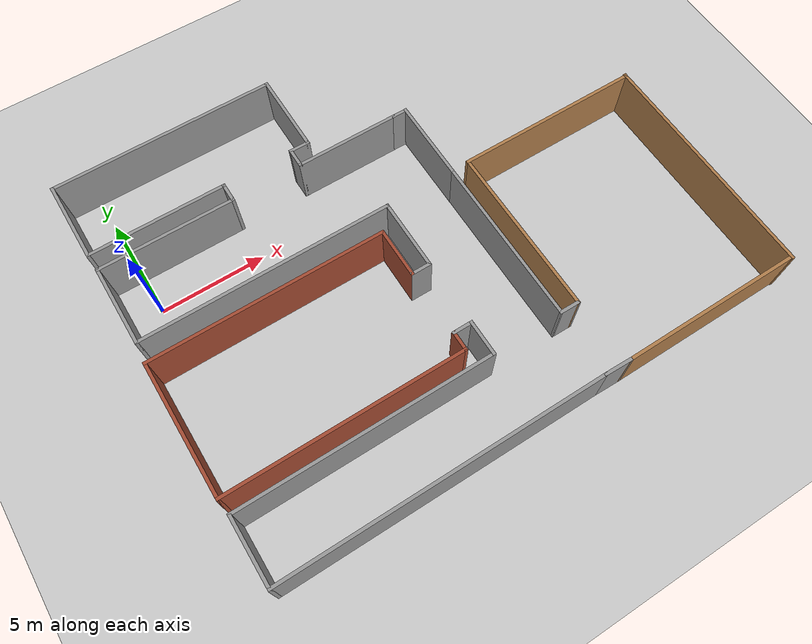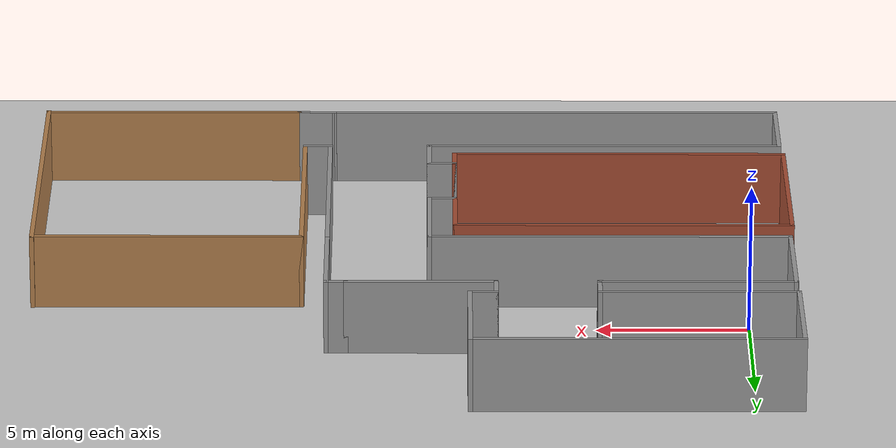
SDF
<sdf version="1.7">
 <world name="lab_world">
  <gravity>0 0 -9.8</gravity>
  <model name="ground_plane">
   <static>1</static>
   <link name="link">
    <collision name="collision">
     <geometry><plane><normal>0 0 1</normal><size>100 100</size></plane></geometry>
     <surface><friction><ode><mu>100</mu><mu2>50</mu2></ode></friction></surface>
    </collision>
    <visual name="visual">
     <cast_shadows>0</cast_shadows>
     <geometry><plane><normal>0 0 1</normal><size>100 100</size></plane></geometry>
     <material>
      <script><uri>file://media/materials/scripts/gazebo.material</uri><name>Gazebo/Grey</name></script>
     </material>
    </visual>
   </link>
  </model>
  <light name="sun" type="directional">
   <pose>0 0 10 0 -0 0</pose>
   <diffuse>0.8 0.8 0.8 1</diffuse>
   <specular>0.2 0.2 0.2 1</specular>
   <attenuation>
    <range>1000</range>
    <constant>0.9</constant>
    <linear>0.01</linear>
    <quadratic>0.001</quadratic>
   </attenuation>
   <direction>-0.5 0.1 -0.9</direction>
   <spot><inner_angle>0</inner_angle><outer_angle>0</outer_angle><falloff>0</falloff></spot>
  </light>
  <magnetic_field>6e-06 2.3e-05 -4.2e-05</magnetic_field>
  <atmosphere type="adiabatic"/>
  <physics type="ode">
   <max_step_size>0.001</max_step_size>
   <real_time_factor>1</real_time_factor>
   <real_time_update_rate>1000</real_time_update_rate>
  </physics>
  <scene><ambient>0.4 0.4 0.4 1</ambient><background>0.7 0.7 0.7 1</background><shadows>0</shadows></scene>
  <spherical_coordinates>
   <surface_model>EARTH_WGS84</surface_model>
   <latitude_deg>0</latitude_deg>
   <longitude_deg>0</longitude_deg>
   <elevation>0</elevation>
   <heading_deg>0</heading_deg>
  </spherical_coordinates>
  <model name="env04">
   <pose>10.9901 -3.37954 0 0 -0 0</pose>
   <link name="Wall_10">
    <collision name="Wall_10_Collision">
     <geometry><box><size>4 0.15 2.5</size></box></geometry>
     <pose>0 0 1.25 0 -0 0</pose>
    </collision>
    <visual name="Wall_10_Visual">
     <pose>0 0 1.25 0 -0 0</pose>
     <geometry><box><size>4 0.15 2.5</size></box></geometry>
     <material>
      <script><uri>file://media/materials/scripts/gazebo.material</uri><name>Gazebo/Grey</name></script>
      <ambient>1 1 1 1</ambient>
     </material>
     <meta><layer>0</layer></meta>
    </visual>
    <pose>-12.4501 7.98454 0 0 -0 -1.5708</pose>
   </link>
   <link name="Wall_13">
    <collision name="Wall_13_Collision">
     <geometry><box><size>6.50038 0.15 2.5</size></box></geometry>
     <pose>0 0 1.25 0 -0 0</pose>
    </collision>
    <visual name="Wall_13_Visual">
     <pose>0 0 1.25 0 -0 0</pose>
     <geometry><box><size>6.50038 0.15 2.5</size></box></geometry>
     <material>
      <script><uri>file://media/materials/scripts/gazebo.material</uri><name>Gazebo/Grey</name></script>
      <ambient>1 1 1 1</ambient>
     </material>
     <meta><layer>0</layer></meta>
    </visual>
    <pose>-9.22509 6.05954 0 0 -0 3.14159</pose>
   </link>
   <link name="Wall_15">
    <collision name="Wall_15_Collision">
     <geometry><box><size>1 0.15 2.5</size></box></geometry>
     <pose>0 0 1.25 0 -0 0</pose>
    </collision>
    <visual name="Wall_15_Visual">
     <pose>0 0 1.25 0 -0 0</pose>
     <geometry><box><size>1 0.15 2.5</size></box></geometry>
     <material>
      <script><uri>file://media/materials/scripts/gazebo.material</uri><name>Gazebo/Grey</name></script>
      <ambient>1 1 1 1</ambient>
     </material>
     <meta><layer>0</layer></meta>
    </visual>
    <pose>-6.05009 5.63454 0 0 -0 -1.5708</pose>
   </link>
   <link name="Wall_17">
    <collision name="Wall_17_Collision">
     <geometry><box><size>5 0.15 2.5</size></box></geometry>
     <pose>0 0 1.25 0 -0 0</pose>
    </collision>
    <visual name="Wall_17_Visual">
     <pose>0 0 1.25 0 -0 0</pose>
     <geometry><box><size>5 0.15 2.5</size></box></geometry>
     <material>
      <script><uri>file://media/materials/scripts/gazebo.material</uri><name>Gazebo/Grey</name></script>
      <ambient>1 1 1 1</ambient>
     </material>
     <meta><layer>0</layer></meta>
    </visual>
    <pose>-0.275095 5.20954 0 0 -0 0</pose>
   </link>
   <link name="Wall_19">
    <collision name="Wall_19_Collision">
     <geometry><box><size>12.0003 0.15 2.5</size></box></geometry>
     <pose>0 0 1.25 0 -0 0</pose>
    </collision>
    <visual name="Wall_19_Visual">
     <pose>0 0 1.25 0 -0 0</pose>
     <geometry><box><size>12.0003 0.15 2.5</size></box></geometry>
     <material>
      <script><uri>file://media/materials/scripts/gazebo.material</uri><name>Gazebo/Grey</name></script>
      <ambient>1 1 1 1</ambient>
     </material>
     <meta><layer>0</layer></meta>
    </visual>
    <pose>-6.4751 1.35954 0 0 -0 0</pose>
   </link>
   <link name="Wall_2">
    <collision name="Wall_2_Collision">
     <geometry><box><size>4 0.15 2.5</size></box></geometry>
     <pose>0 0 1.25 0 -0 0</pose>
    </collision>
    <visual name="Wall_2_Visual">
     <pose>0 0 1.25 0 -0 0</pose>
     <geometry><box><size>4 0.15 2.5</size></box></geometry>
     <material>
      <script><uri>file://media/materials/scripts/gazebo.material</uri><name>Gazebo/Grey</name></script>
      <ambient>1 1 1 1</ambient>
     </material>
     <meta><layer>0</layer></meta>
    </visual>
    <pose>-12.4001 3.28454 0 0 -0 1.5708</pose>
   </link>
   <link name="Wall_21">
    <collision name="Wall_21_Collision">
     <geometry><box><size>3.99013 0.15 2.5</size></box></geometry>
     <pose>0 0 1.25 0 -0 0</pose>
    </collision>
    <visual name="Wall_21_Visual">
     <pose>0 0 1.25 0 -0 0</pose>
     <geometry><box><size>3.99013 0.15 2.5</size></box></geometry>
     <material>
      <script><uri>file://media/materials/scripts/gazebo.material</uri><name>Gazebo/Grey</name></script>
      <ambient>1 1 1 1</ambient>
     </material>
     <meta><layer>0</layer></meta>
    </visual>
    <pose>2.7999 3.28948 0 0 -0 1.5708</pose>
   </link>
   <link name="Wall_22">
    <collision name="Wall_22_Collision">
     <geometry><box><size>0.8 0.15 2.5</size></box></geometry>
     <pose>0 0 1.25 0 -0 0</pose>
    </collision>
    <visual name="Wall_22_Visual">
     <pose>0 0 1.25 0 -0 0</pose>
     <geometry><box><size>0.8 0.15 2.5</size></box></geometry>
     <material>
      <script><uri>file://media/materials/scripts/gazebo.material</uri><name>Gazebo/Grey</name></script>
      <ambient>1 1 1 1</ambient>
     </material>
     <meta><layer>0</layer></meta>
    </visual>
    <pose>2.47491 5.20954 0 0 -0 -3.14159</pose>
   </link>
   <link name="Wall_24">
    <collision name="Wall_24_Collision">
     <geometry><box><size>3.5 0.15 2.5</size></box></geometry>
     <pose>0 0 1.25 0 -0 0</pose>
    </collision>
    <visual name="Wall_24_Visual">
     <pose>0 0 1.25 0 -0 0</pose>
     <geometry><box><size>3.5 0.15 2.5</size></box></geometry>
     <material>
      <script><uri>file://media/materials/scripts/gazebo.material</uri><name>Gazebo/Grey</name></script>
      <ambient>1 1 1 1</ambient>
     </material>
     <meta><layer>0</layer></meta>
    </visual>
    <pose>-0.550096 -0.315456 0 0 -0 -1.5708</pose>
   </link>
   <link name="Wall_25">
    <collision name="Wall_25_Collision">
     <geometry><box><size>1 0.15 2.5</size></box></geometry>
     <pose>0 0 1.25 0 -0 0</pose>
    </collision>
    <visual name="Wall_25_Visual">
     <pose>0 0 1.25 0 -0 0</pose>
     <geometry><box><size>1 0.15 2.5</size></box></geometry>
     <material>
      <script><uri>file://media/materials/scripts/gazebo.material</uri><name>Gazebo/Grey</name></script>
      <ambient>1 1 1 1</ambient>
     </material>
     <meta><layer>0</layer></meta>
    </visual>
    <pose>-0.975095 -1.99046 0 0 -0 3.14159</pose>
   </link>
   <link name="Wall_26">
    <collision name="Wall_26_Collision">
     <geometry><box><size>2.5 0.15 2.5</size></box></geometry>
     <pose>0 0 1.25 0 -0 0</pose>
    </collision>
    <visual name="Wall_26_Visual">
     <pose>0 0 1.25 0 -0 0</pose>
     <geometry><box><size>2.5 0.15 2.5</size></box></geometry>
     <material>
      <script><uri>file://media/materials/scripts/gazebo.material</uri><name>Gazebo/Bricks</name></script>
      <ambient>1 1 1 1</ambient>
     </material>
     <meta><layer>0</layer></meta>
    </visual>
    <pose>-1.4001 -0.815456 0 0 -0 1.5708</pose>
   </link>
   <link name="Wall_27">
    <collision name="Wall_27_Collision">
     <geometry><box><size>11.25 0.15 2.5</size></box></geometry>
     <pose>0 0 1.25 0 -0 0</pose>
    </collision>
    <visual name="Wall_27_Visual">
     <pose>0 0 1.25 0 -0 0</pose>
     <geometry><box><size>11.25 0.15 2.5</size></box></geometry>
     <material>
      <script><uri>file://media/materials/scripts/gazebo.material</uri><name>Gazebo/Bricks</name></script>
      <ambient>1 1 1 1</ambient>
     </material>
     <meta><layer>0</layer></meta>
    </visual>
    <pose>-6.9501 0.359544 0 0 -0 3.14159</pose>
   </link>
   <link name="Wall_28">
    <collision name="Wall_28_Collision">
     <geometry><box><size>6.5 0.15 2.5</size></box></geometry>
     <pose>0 0 1.25 0 -0 0</pose>
    </collision>
    <visual name="Wall_28_Visual">
     <pose>0 0 1.25 0 -0 0</pose>
     <geometry><box><size>6.5 0.15 2.5</size></box></geometry>
     <material>
      <script><uri>file://media/materials/scripts/gazebo.material</uri><name>Gazebo/Bricks</name></script>
      <ambient>1 1 1 1</ambient>
     </material>
     <meta><layer>0</layer></meta>
    </visual>
    <pose>-12.5001 -2.81546 0 0 -0 -1.5708</pose>
   </link>
   <link name="Wall_29">
    <collision name="Wall_29_Collision">
     <geometry><box><size>11.25 0.15 2.5</size></box></geometry>
     <pose>0 0 1.25 0 -0 0</pose>
    </collision>
    <visual name="Wall_29_Visual">
     <pose>0 0 1.25 0 -0 0</pose>
     <geometry><box><size>11.25 0.15 2.5</size></box></geometry>
     <material>
      <script><uri>file://media/materials/scripts/gazebo.material</uri><name>Gazebo/Bricks</name></script>
      <ambient>1 1 1 1</ambient>
     </material>
     <meta><layer>0</layer></meta>
    </visual>
    <pose>-6.9501 -5.99046 0 0 -0 0</pose>
   </link>
   <link name="Wall_30">
    <collision name="Wall_30_Collision">
     <geometry><box><size>1 0.15 2.5</size></box></geometry>
     <pose>0 0 1.25 0 -0 0</pose>
    </collision>
    <visual name="Wall_30_Visual">
     <pose>0 0 1.25 0 -0 0</pose>
     <geometry><box><size>1 0.15 2.5</size></box></geometry>
     <material>
      <script><uri>file://media/materials/scripts/gazebo.material</uri><name>Gazebo/Bricks</name></script>
      <ambient>1 1 1 1</ambient>
     </material>
     <meta><layer>0</layer></meta>
    </visual>
    <pose>-1.4001 -5.56546 0 0 -0 1.5708</pose>
   </link>
   <link name="Wall_31">
    <collision name="Wall_31_Collision">
     <geometry><box><size>1 0.15 2.5</size></box></geometry>
     <pose>0 0 1.25 0 -0 0</pose>
    </collision>
    <visual name="Wall_31_Visual">
     <pose>0 0 1.25 0 -0 0</pose>
     <geometry><box><size>1 0.15 2.5</size></box></geometry>
     <material>
      <script><uri>file://media/materials/scripts/gazebo.material</uri><name>Gazebo/Grey</name></script>
      <ambient>1 1 1 1</ambient>
     </material>
     <meta><layer>0</layer></meta>
    </visual>
    <pose>-0.975095 -5.14046 0 0 -0 0</pose>
   </link>
   <link name="Wall_32">
    <collision name="Wall_32_Collision">
     <geometry><box><size>1.75 0.15 2.5</size></box></geometry>
     <pose>0 0 1.25 0 -0 0</pose>
    </collision>
    <visual name="Wall_32_Visual">
     <pose>0 0 1.25 0 -0 0</pose>
     <geometry><box><size>1.75 0.15 2.5</size></box></geometry>
     <material>
      <script><uri>file://media/materials/scripts/gazebo.material</uri><name>Gazebo/Grey</name></script>
      <ambient>1 1 1 1</ambient>
     </material>
     <meta><layer>0</layer></meta>
    </visual>
    <pose>-0.550096 -5.94046 0 0 -0 -1.5708</pose>
   </link>
   <link name="Wall_33">
    <collision name="Wall_33_Collision">
     <geometry><box><size>12 0.15 2.5</size></box></geometry>
     <pose>0 0 1.25 0 -0 0</pose>
    </collision>
    <visual name="Wall_33_Visual">
     <pose>0 0 1.25 0 -0 0</pose>
     <geometry><box><size>12 0.15 2.5</size></box></geometry>
     <material>
      <script><uri>file://media/materials/scripts/gazebo.material</uri><name>Gazebo/Grey</name></script>
      <ambient>1 1 1 1</ambient>
     </material>
     <meta><layer>0</layer></meta>
    </visual>
    <pose>-6.4751 -6.74046 0 0 -0 3.14159</pose>
   </link>
   <link name="Wall_35">
    <collision name="Wall_35_Collision">
     <geometry><box><size>8.25 0.15 2.5</size></box></geometry>
     <pose>0 0 1.25 0 -0 0</pose>
    </collision>
    <visual name="Wall_35_Visual">
     <pose>0 0 1.25 0 -0 0</pose>
     <geometry><box><size>8.25 0.15 2.5</size></box></geometry>
     <material>
      <script><uri>file://media/materials/scripts/gazebo.material</uri><name>Gazebo/Grey</name></script>
      <ambient>1 1 1 1</ambient>
     </material>
     <meta><layer>0</layer></meta>
    </visual>
    <pose>2.7999 -2.68059 0 0 -0 -1.5708</pose>
   </link>
   <link name="Wall_36">
    <collision name="Wall_36_Collision">
     <geometry><box><size>1.00096 0.15 2.5</size></box></geometry>
     <pose>0 0 1.25 0 -0 0</pose>
    </collision>
    <visual name="Wall_36_Visual">
     <pose>0 0 1.25 0 -0 0</pose>
     <geometry><box><size>1.00096 0.15 2.5</size></box></geometry>
     <material>
      <script><uri>file://media/materials/scripts/gazebo.material</uri><name>Gazebo/Grey</name></script>
      <ambient>1 1 1 1</ambient>
     </material>
     <meta><layer>0</layer></meta>
    </visual>
    <pose>3.22491 -6.73552 0 0 -0 -0.011606</pose>
   </link>
   <link name="Wall_37">
    <collision name="Wall_37_Collision">
     <geometry><box><size>8.25 0.15 2.5</size></box></geometry>
     <pose>0 0 1.25 0 -0 0</pose>
    </collision>
    <visual name="Wall_37_Visual">
     <pose>0 0 1.25 0 -0 0</pose>
     <geometry><box><size>8.25 0.15 2.5</size></box></geometry>
     <material>
      <script><uri>file://media/materials/scripts/gazebo.material</uri><name>Gazebo/Wood</name></script>
      <ambient>1 1 1 1</ambient>
     </material>
     <meta><layer>0</layer></meta>
    </visual>
    <pose>3.6499 -2.69046 0 0 -0 1.5708</pose>
   </link>
   <link name="Wall_38">
    <collision name="Wall_38_Collision">
     <geometry><box><size>9.00037 0.15 2.5</size></box></geometry>
     <pose>0 0 1.25 0 -0 0</pose>
    </collision>
    <visual name="Wall_38_Visual">
     <pose>0 0 1.25 0 -0 0</pose>
     <geometry><box><size>9.00037 0.15 2.5</size></box></geometry>
     <material>
      <script><uri>file://media/materials/scripts/gazebo.material</uri><name>Gazebo/Wood</name></script>
      <ambient>1 1 1 1</ambient>
     </material>
     <meta><layer>0</layer></meta>
    </visual>
    <pose>8.0749 1.35954 0 0 -0 0</pose>
   </link>
   <link name="Wall_39">
    <collision name="Wall_39_Collision">
     <geometry><box><size>11.4595 0.15 2.5</size></box></geometry>
     <pose>0 0 1.25 0 -0 0</pose>
    </collision>
    <visual name="Wall_39_Visual">
     <pose>0 0 1.25 0 -0 0</pose>
     <geometry><box><size>11.4595 0.15 2.5</size></box></geometry>
     <material>
      <script><uri>file://media/materials/scripts/gazebo.material</uri><name>Gazebo/Wood</name></script>
      <ambient>1 1 1 1</ambient>
     </material>
     <meta><layer>0</layer></meta>
    </visual>
    <pose>12.4999 -4.25477 0 0 -0 -1.5708</pose>
   </link>
   <link name="Wall_4">
    <collision name="Wall_4_Collision">
     <geometry><box><size>6.5 0.15 2.5</size></box></geometry>
     <pose>0 0 1.25 0 -0 0</pose>
    </collision>
    <visual name="Wall_4_Visual">
     <pose>0 0 1.25 0 -0 0</pose>
     <geometry><box><size>6.5 0.15 2.5</size></box></geometry>
     <material>
      <script><uri>file://media/materials/scripts/gazebo.material</uri><name>Gazebo/Grey</name></script>
      <ambient>1 1 1 1</ambient>
     </material>
     <meta><layer>0</layer></meta>
    </visual>
    <pose>-9.22509 5.20954 0 0 -0 0</pose>
   </link>
   <link name="Wall_40">
    <collision name="Wall_40_Collision">
     <geometry><box><size>8.75038 0.15 2.5</size></box></geometry>
     <pose>0 0 1.25 0 -0 0</pose>
    </collision>
    <visual name="Wall_40_Visual">
     <pose>0 0 1.25 0 -0 0</pose>
     <geometry><box><size>8.75038 0.15 2.5</size></box></geometry>
     <material>
      <script><uri>file://media/materials/scripts/gazebo.material</uri><name>Gazebo/Wood</name></script>
      <ambient>1 1 1 1</ambient>
     </material>
     <meta><layer>0</layer></meta>
    </visual>
    <pose>8.1999 -9.86909 0 0 -0 3.14159</pose>
   </link>
   <link name="Wall_42">
    <collision name="Wall_42_Collision">
     <geometry><box><size>3.25 0.15 2.5</size></box></geometry>
     <pose>0 0 1.25 0 -0 0</pose>
    </collision>
    <visual name="Wall_42_Visual">
     <pose>0 0 1.25 0 -0 0</pose>
     <geometry><box><size>3.25 0.15 2.5</size></box></geometry>
     <material>
      <script><uri>file://media/materials/scripts/gazebo.material</uri><name>Gazebo/Grey</name></script>
      <ambient>1 1 1 1</ambient>
     </material>
     <meta><layer>0</layer></meta>
    </visual>
    <pose>-12.4001 -8.29046 0 0 -0 -1.5708</pose>
   </link>
   <link name="Wall_43">
    <collision name="Wall_43_Collision">
     <geometry><box><size>15.25 0.15 2.5</size></box></geometry>
     <pose>0 0 1.25 0 -0 0</pose>
    </collision>
    <visual name="Wall_43_Visual">
     <pose>0 0 1.25 0 -0 0</pose>
     <geometry><box><size>15.25 0.15 2.5</size></box></geometry>
     <material>
      <script><uri>file://media/materials/scripts/gazebo.material</uri><name>Gazebo/Grey</name></script>
      <ambient>1 1 1 1</ambient>
     </material>
     <meta><layer>0</layer></meta>
    </visual>
    <pose>-4.8501 -9.84046 0 0 -0 0</pose>
   </link>
   <link name="Wall_46">
    <collision name="Wall_46_Collision">
     <geometry><box><size>1.35034 0.15 2.5</size></box></geometry>
     <pose>0 0 1.25 0 -0 0</pose>
    </collision>
    <visual name="Wall_46_Visual">
     <pose>0 0 1.25 0 -0 0</pose>
     <geometry><box><size>1.35034 0.15 2.5</size></box></geometry>
     <material>
      <script><uri>file://media/materials/scripts/gazebo.material</uri><name>Gazebo/Grey</name></script>
      <ambient>1 1 1 1</ambient>
     </material>
     <meta><layer>0</layer></meta>
    </visual>
    <pose>3.2999 -9.85477 0 0 -0 3.11774</pose>
   </link>
   <link name="Wall_6">
    <collision name="Wall_6_Collision">
     <geometry><box><size>1 0.15 2.5</size></box></geometry>
     <pose>0 0 1.25 0 -0 0</pose>
    </collision>
    <visual name="Wall_6_Visual">
     <pose>0 0 1.25 0 -0 0</pose>
     <geometry><box><size>1 0.15 2.5</size></box></geometry>
     <material>
      <script><uri>file://media/materials/scripts/gazebo.material</uri><name>Gazebo/Grey</name></script>
      <ambient>1 1 1 1</ambient>
     </material>
     <meta><layer>0</layer></meta>
    </visual>
    <pose>-2.7001 5.63454 0 0 -0 1.5708</pose>
   </link>
   <link name="Wall_7">
    <collision name="Wall_7_Collision">
     <geometry><box><size>1.00032 0.15 2.5</size></box></geometry>
     <pose>0 0 1.25 0 -0 0</pose>
    </collision>
    <visual name="Wall_7_Visual">
     <pose>0 0 1.25 0 -0 0</pose>
     <geometry><box><size>1.00032 0.15 2.5</size></box></geometry>
     <material>
      <script><uri>file://media/materials/scripts/gazebo.material</uri><name>Gazebo/Grey</name></script>
      <ambient>1 1 1 1</ambient>
     </material>
     <meta><layer>0</layer></meta>
    </visual>
    <pose>-2.27509 6.05954 0 0 -0 0</pose>
   </link>
   <link name="Wall_8">
    <collision name="Wall_8_Collision">
     <geometry><box><size>4 0.15 2.5</size></box></geometry>
     <pose>0 0 1.25 0 -0 0</pose>
    </collision>
    <visual name="Wall_8_Visual">
     <pose>0 0 1.25 0 -0 0</pose>
     <geometry><box><size>4 0.15 2.5</size></box></geometry>
     <material>
      <script><uri>file://media/materials/scripts/gazebo.material</uri><name>Gazebo/Grey</name></script>
      <ambient>1 1 1 1</ambient>
     </material>
     <meta><layer>0</layer></meta>
    </visual>
    <pose>-1.8501 7.98454 0 0 -0 1.5708</pose>
   </link>
   <link name="Wall_9">
    <collision name="Wall_9_Collision">
     <geometry><box><size>10.75 0.15 2.5</size></box></geometry>
     <pose>0 0 1.25 0 -0 0</pose>
    </collision>
    <visual name="Wall_9_Visual">
     <pose>0 0 1.25 0 -0 0</pose>
     <geometry><box><size>10.75 0.15 2.5</size></box></geometry>
     <material>
      <script><uri>file://media/materials/scripts/gazebo.material</uri><name>Gazebo/Grey</name></script>
      <ambient>1 1 1 1</ambient>
     </material>
     <meta><layer>0</layer></meta>
    </visual>
    <pose>-7.1501 9.90954 0 0 -0 3.14159</pose>
   </link>
   <static>1</static>
  </model>
 </world>
</sdf>
